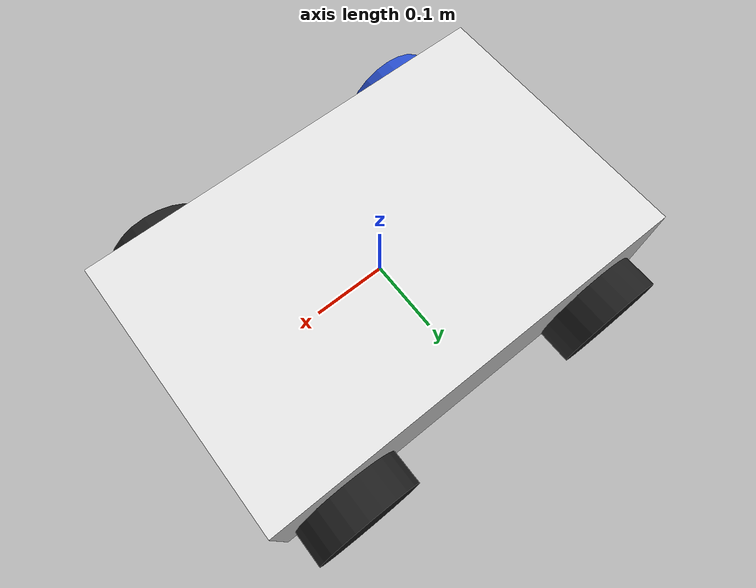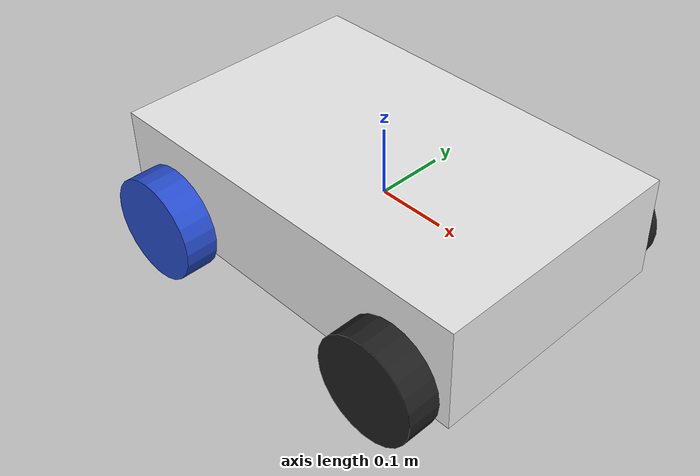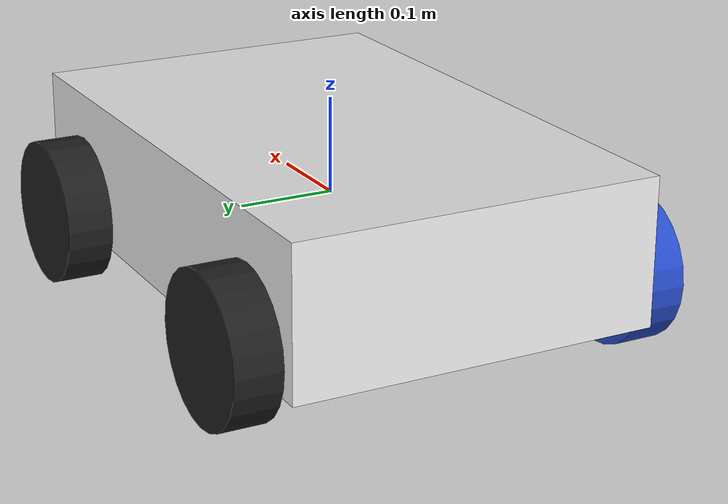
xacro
<?xml version="1.0"?>
<robot xmlns:xacro="http://www.ros.org/wiki/xacro">

    <!-- Body Dimensions -->
    <xacro:property name="body_link_x_dim" value="0.59" />
    <xacro:property name="body_link_y_dim" value="0.38" />
    <xacro:property name="body_link_z_dim" value="0.1524" />

    <!-- wheel Dimesnions  -->
    <xacro:property name="wheel_link_radius" value="0.0762" />
    <xacro:property name="wheel_link_length" value="0.04826" />
    <xacro:property name="wheel_link_z_location" value="-0.04826" />

    <!-- Material Density -->
    <xacro:property name="body_density" value="2710.0" />
    <xacro:property name="wheel_density" value="1100.0" />

    <!-- Pi COnstant -->
    <xacro:property name="pi_const" value="3.14159265" />

    <!-- Robot body and wheel mass -->
    <xacro:property name="body_mass" value="${body_density*body_link_x_dim*body_link_y_dim*body_link_z_dim}" />
    <xacro:property name="wheel_mass" value="${wheel_density*pi_const*wheel_link_radius*wheel_link_radius*wheel_link_length}" />

    <!-- mOMENT OF INERTIA OF THE wheel -->
    <xacro:property name="Iz_wheel" value="${0.5*wheel_mass*wheel_link_radius*wheel_link_radius}" />
    <xacro:property name="I_wheel" value="${(1.0/12.0)*wheel_mass*(3.0*wheel_link_radius*wheel_link_radius+wheel_link_length*wheel_link_length)}" />

    <!-- This macro defines the complete inertial section of the wheel -->
    <xacro:macro name="inertia_wheel">
        <inertial>
        <origin rpu="0 0 0" xyz="0 0 0"/>
        <mass value="${wheel_mass}" />
        <inertia ixx="${I_wheel}" ixy="0.0" ixz="0.0" iyy="${I_wheel}" iyz="0" izz="${Iz_wheel}"/>
        </inertial>
    </xacro:macro>

    <!-- Addin Gazebo Options -->
    <link name="base_link">
    </link>
    <joint name="base_footprint_joint" type="fixed">
        <parent link="base_link" />
        <child link="base_footprint" />
        <origin xyz ="0 0 0" rpy="0 0 0"/>
    </joint>
    <link name="base_footprint"></link>

    <joint name="body_joint" type="fixed">
        <parent link="base_link" />
        <child link="body_link" />
    </joint>

    <link name="body_link">
        <visual>
            <geometry>
                <box size="${body_link_x_dim} ${body_link_y_dim} ${body_link_z_dim}" />
            </geometry>
            <origin rpy="0 0 0" xyz="0 0 0" />
        </visual>
        <collision>
            <geometry>
                <box size="${body_link_x_dim} ${body_link_y_dim} ${body_link_z_dim}" />
            </geometry>"
            <origin rpy="0 0 0" xyz="0 0 0" />
        </collision>
        <inertial>
            <origin rpu="0 0 0" xyz="0 0 0"/>
            <mass value="${body_mass}" />
        <inertia ixx="${(1.0/12.0)*body_mass*((body_link_y_dim*body_link_y_dim)+(body_link_z_dim*body_link_z_dim))}" ixy="0" ixz="0"
        iyy="${(1.0/12.0)*body_mass*((body_link_x_dim*body_link_x_dim)+(body_link_z_dim*body_link_z_dim))}" iyz="0"
        izz="${(1.0/12.0)*body_mass*((body_link_y_dim*body_link_y_dim)+(body_link_x_dim*body_link_x_dim))}"></inertia>

        </inertial>

    </link>
    <gazebo reference="body_link">
        <material>Gazebo/White</material>
    </gazebo>

    <!-- BACK Right wheel  -->
    <joint name="wheel1_joint" type="continuous">
        <parent link="body_link" />
        <child link="wheel1_link" />
        <origin xyz="${(-body_link_x_dim/2)+(1.2*wheel_link_radius)} ${(-body_link_y_dim/2)-(wheel_link_length/2)} ${wheel_link_z_location}" rpy="0 0 0" />
        <axis xyz="0 1 0" />
        <limit effort="1000" velocity="1000"/>
        <dynamics damping="1.0" friction="1.0" />
    </joint>
    <link name="wheel1_link">
        <visual>
            <origin rpy="1.570795 0 0" xyz="0 0 0" />
            <geometry>
                <cylinder length="${wheel_link_length}" radius="${wheel_link_radius}"/>
            </geometry>
            <material name="blue" />
        </visual>
        <collision>
            <origin rpy="1.570795 0 0" xyz="0 0 0" />
            <geometry>
                <cylinder length="${wheel_link_length}" radius="${wheel_link_radius}"/>
            </geometry>
            <material name="black" />
        </collision>

        <xacro:inertia_wheel />
    </link>
    <gazebo reference="wheel1_link">
        <material>Gazebo/Black</material>
    </gazebo>

    <!-- BACK Left wheel  -->
    <joint name="wheel2_joint" type="continuous">
        <parent link="body_link" />
        <child link="wheel2_link" />
        <origin xyz="${-body_link_x_dim/2+1.2*wheel_link_radius} ${body_link_y_dim/2+wheel_link_length/2} ${wheel_link_z_location}" rpy="0 0 0" />
        <axis xyz="0 1 0" />
        <limit effort="1000" velocity="1000"/>
        <dynamics damping="1.0" friction="1.0" />
    </joint>
    <link name="wheel2_link">
        <visual>
            <origin rpy="1.570795 0 0" xyz="0 0 0" />
            <geometry>
                <cylinder length="${wheel_link_length}" radius="${wheel_link_radius}"/>
            </geometry>
            <material name="black" />
        </visual>
        <collision>
            <origin rpy="1.570795 0 0" xyz="0 0 0" />
            <geometry>
                <cylinder length="${wheel_link_length}" radius="${wheel_link_radius}"/>
            </geometry>
            <material name="black" />
        </collision>

        <xacro:inertia_wheel />
    </link>
    <gazebo reference="wheel2_link">
        <material>Gazebo/Black</material>
    </gazebo>

    <!-- FRONT right wheel  -->
    <joint name="wheel3_joint" type="continuous">
        <parent link="body_link" />
        <child link="wheel3_link" />
        <origin xyz="${body_link_x_dim/2-1.2*wheel_link_radius} ${-body_link_y_dim/2-wheel_link_length/2} ${wheel_link_z_location}" rpy="0 0 0" />
        <axis xyz="0 1 0" />
        <limit effort="1000" velocity="1000"/>
        <dynamics damping="1.0" friction="1.0" />
    </joint>
    <link name="wheel3_link">
        <visual>
            <origin rpy="1.570795 0 0" xyz="0 0 0" />
            <geometry>
                <cylinder length="${wheel_link_length}" radius="${wheel_link_radius}"/>
            </geometry>
            <material name="black" />
        </visual>
        <collision>
            <origin rpy="1.570795 0 0" xyz="0 0 0" />
            <geometry>
                <cylinder length="${wheel_link_length}" radius="${wheel_link_radius}"/>
            </geometry>
            <material name="black" />
        </collision>

        <xacro:inertia_wheel />
    </link>
    <gazebo reference="wheel3_link">
        <material>Gazebo/Black</material>
    </gazebo>

    <!-- FRONT left wheel  -->
    <joint name="wheel4_joint" type="continuous">
        <parent link="body_link" />
        <child link="wheel4_link" />
        <origin xyz="${body_link_x_dim/2-1.2*wheel_link_radius} ${body_link_y_dim/2+wheel_link_length/2} ${wheel_link_z_location}" rpy="0 0 0" />
        <axis xyz="0 1 0" />
        <limit effort="1000" velocity="1000"/>
        <dynamics damping="1.0" friction="1.0" />
    </joint>
    <link name="wheel4_link">
        <visual>
            <origin rpy="1.570795 0 0" xyz="0 0 0" />
            <geometry>
                <cylinder length="${wheel_link_length}" radius="${wheel_link_radius}"/>
            </geometry>
            <material name="black" />
        </visual>
        <collision>
            <origin rpy="1.570795 0 0" xyz="0 0 0" />
            <geometry>
                <cylinder length="${wheel_link_length}" radius="${wheel_link_radius}"/>
            </geometry>
            <material name="black" />
        </collision>

        <xacro:inertia_wheel />
    </link>
    <gazebo reference="wheel4_link">
        <material>Gazebo/Black</material>
    </gazebo>

</robot>
